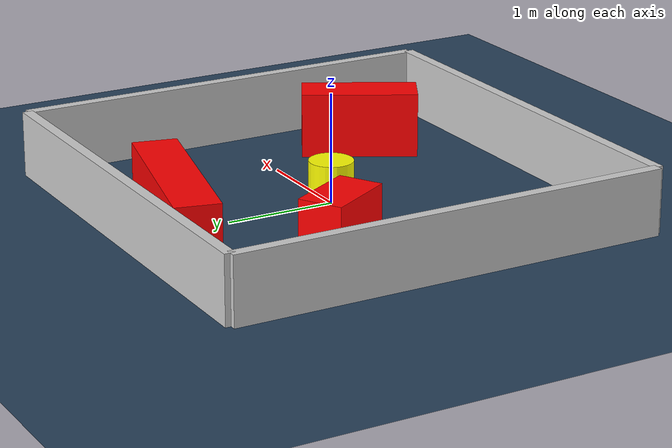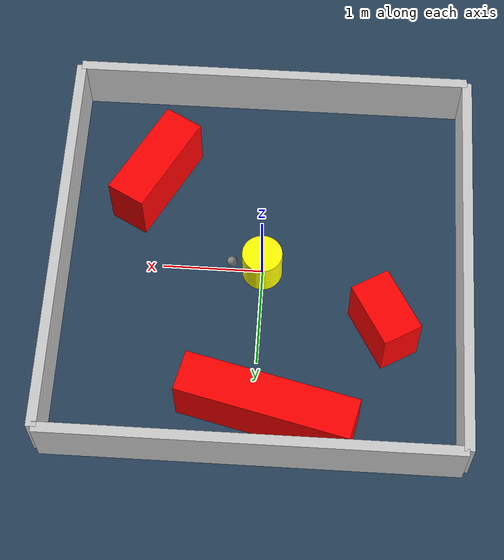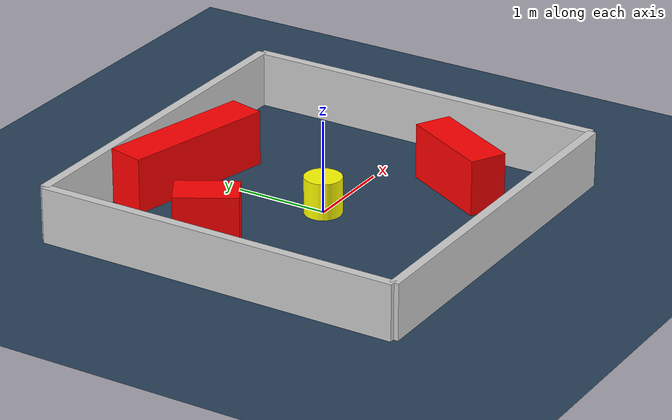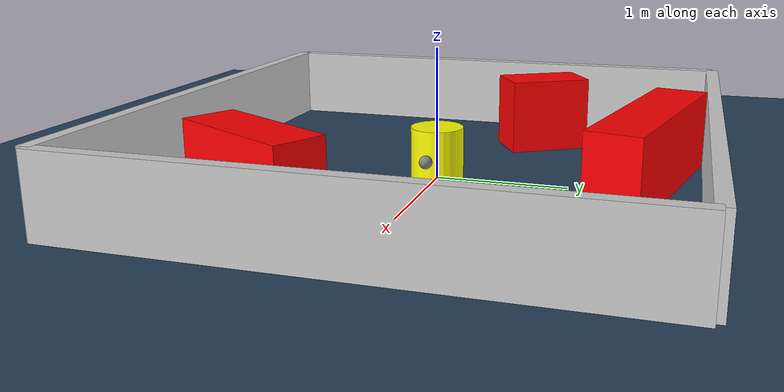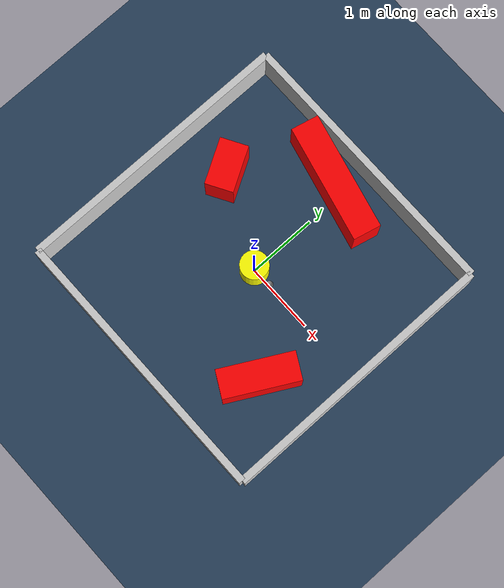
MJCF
<?xml version="1.0" ?>
<mujoco model="generated_environment">
  <option timestep="0.01" integrator="RK4" cone="elliptic"/>
  <default>
    <geom density="1"/>
  </default>
  <asset>
    <texture builtin="gradient" height="3072" rgb1="0.3 0.5 0.7" rgb2="0 0 0" type="skybox" width="512"/>
    <texture builtin="checker" height="300" mark="edge" markrgb="0.8 0.8 0.8" name="groundplane" rgb1="0.2 0.3 0.4" rgb2="0.1 0.2 0.3" type="2d" width="300"/>
    <material name="groundplane" reflectance="0.2" texrepeat="5 5" texture="groundplane" texuniform="true"/>
    <material name="robot" rgba="0.0 1.0 0.0 1"/>
  </asset>
  <worldbody>
    <light dir="0 0 -1" directional="true" pos="0 0 1.5"/>
    <geom condim="4" friction="1.0 0.005 0.001" material="groundplane" name="floor" size="0 0 0.05" type="plane"/>
    <body name="walls">
      <geom name="wall_1" condim="4" pos="-2.0 0.0 0.3" rgba="0.800000011920929 0.800000011920929 0.800000011920929 1.0" size="0.05 2.0 0.3" type="box"/>
      <geom name="wall_2" condim="4" pos="2.0 0.0 0.3" rgba="0.800000011920929 0.800000011920929 0.800000011920929 1.0" size="0.05 2.0 0.3" type="box"/>
      <geom name="wall_3" condim="4" pos="0.0 -2.0 0.3" rgba="0.800000011920929 0.800000011920929 0.800000011920929 1.0" size="2.0 0.05 0.3" type="box"/>
      <geom name="wall_4" condim="4" pos="0.0 2.0 0.3" rgba="0.800000011920929 0.800000011920929 0.800000011920929 1.0" size="2.0 0.05 0.3" type="box"/>
    </body>
    <body name="robot">
      <joint name="joint_x" type="slide" pos="0 0 0" axis="1 0 0"/>
      <joint name="joint_y" type="slide" pos="0 0 0" axis="0 1 0"/>
      <geom name="robot" type="sphere" pos="0.3 0.0 0.2" size="0.05" mass="5." friction="1.0 0.005 0.0001" condim="4" rgba="0.5 0.5 0.5 1.0"/>
      <site name="sensor_ball"/>
    </body>
    <body name="obstacle_movable_1">
      <geom name="obstacle_movable_1" condim="4" pos="0.0 0.0 0.2" euler="0 0 0.0" friction="1.0 0.005 0.001" rgba="1.0 1.0 0.0 1.0" size="0.2 0.2 0.0" type="cylinder" mass="0.1"/>
      <joint type="free"/>
    </body>
    <body name="obstacle_2_static">
      <geom name="obstacle_2_static" condim="4" pos="-1.217951387112356 0.6009919394865404 0.3" euler="0 0 120.2032305426546" friction="1.0 0.005 0.001" rgba="1 0 0 1" size="0.3321159139007277 0.2 0.3" type="box"/>
    </body>
    <body name="obstacle_3_static">
      <geom name="obstacle_3_static" condim="4" pos="-0.13389080060521952 1.55817152019233 0.3" euler="0 0 346.6219067873304" friction="1.0 0.005 0.001" rgba="1 0 0 1" size="0.850491771066521 0.2 0.3" type="box"/>
    </body>
    <body name="obstacle_4_static">
      <geom name="obstacle_4_static" condim="4" pos="1.137310279451568 -0.9417304837113618 0.3" euler="0 0 241.56322999703437" friction="1.0 0.005 0.001" rgba="1 0 0 1" size="0.5347058291820813 0.2 0.3" type="box"/>
    </body>
  </worldbody>
  <actuator>
    <motor name="actuator_x" joint="joint_x" gear="1" ctrlrange="-1 1"/>
    <motor name="actuator_y" joint="joint_y" gear="1" ctrlrange="-1 1"/>
  </actuator>
</mujoco>
